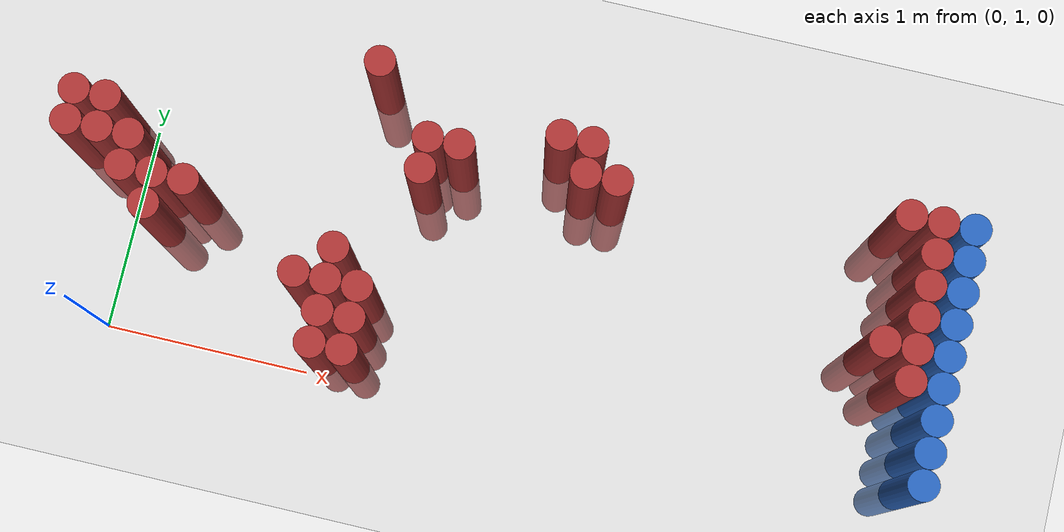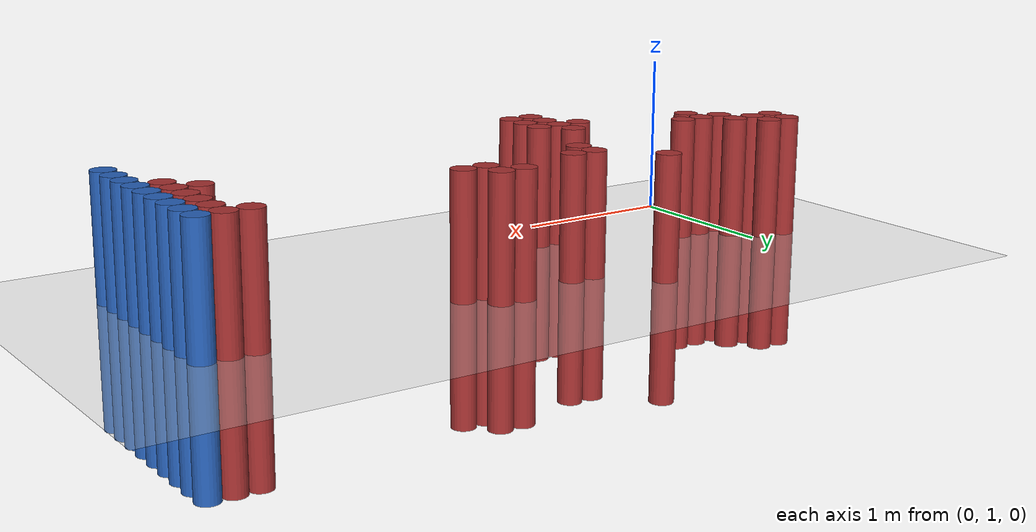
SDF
<sdf version="1.6">
 <world name="default">
  <model name="ground_plane">
   <static>1</static>
   <link name="link">
    <collision name="collision">
     <geometry><plane><normal>0 0 1</normal><size>100 100</size></plane></geometry>
     <surface><friction><ode><mu>100</mu><mu2>50</mu2></ode></friction></surface>
    </collision>
    <visual name="visual">
     <cast_shadows>0</cast_shadows>
     <geometry><plane><normal>0 0 1</normal><size>100 100</size></plane></geometry>
     <material>
      <script><uri>file://media/materials/scripts/gazebo.material</uri><name>Gazebo/Grey</name></script>
     </material>
    </visual>
   </link>
  </model>
  <model name="unit_cylinder_130">
   <static>1</static>
   <pose>3.925000 1.225000 0.000000 0.000000 0.000000 0.000000</pose>
   <link name="link">
    <inertial>
     <mass>1</mass>
     <inertia><ixx>0.145833</ixx><ixy>0</ixy><ixz>0</ixz><iyy>0.145833</iyy><iyz>0</iyz><izz>0.125</izz></inertia>
    </inertial>
    <collision name="collision">
     <geometry><cylinder><radius>0.075000</radius><length>1.5</length></cylinder></geometry>
    </collision>
    <visual name="visual">
     <geometry><cylinder><radius>0.075000</radius><length>1.5</length></cylinder></geometry>
     <material>
      <ambient>0.152000 0.379000 0.720000 1</ambient>
      <diffuse>0.152000 0.379000 0.720000 1</diffuse>
     </material>
     <material>
      <script><name>Gazebo/Grey</name><uri>file://media/materials/scripts/gazebo.material</uri></script>
     </material>
    </visual>
   </link>
  </model>
  <model name="unit_cylinder_132">
   <static>1</static>
   <pose>3.925000 1.375000 0.000000 0.000000 0.000000 0.000000</pose>
   <link name="link">
    <inertial>
     <mass>1</mass>
     <inertia><ixx>0.145833</ixx><ixy>0</ixy><ixz>0</ixz><iyy>0.145833</iyy><iyz>0</iyz><izz>0.125</izz></inertia>
    </inertial>
    <collision name="collision">
     <geometry><cylinder><radius>0.075000</radius><length>1.5</length></cylinder></geometry>
    </collision>
    <visual name="visual">
     <geometry><cylinder><radius>0.075000</radius><length>1.5</length></cylinder></geometry>
     <material>
      <ambient>0.152000 0.379000 0.720000 1</ambient>
      <diffuse>0.152000 0.379000 0.720000 1</diffuse>
     </material>
     <material>
      <script><name>Gazebo/Grey</name><uri>file://media/materials/scripts/gazebo.material</uri></script>
     </material>
    </visual>
   </link>
  </model>
  <model name="unit_cylinder_134">
   <static>1</static>
   <pose>3.925000 1.525000 0.000000 0.000000 0.000000 0.000000</pose>
   <link name="link">
    <inertial>
     <mass>1</mass>
     <inertia><ixx>0.145833</ixx><ixy>0</ixy><ixz>0</ixz><iyy>0.145833</iyy><iyz>0</iyz><izz>0.125</izz></inertia>
    </inertial>
    <collision name="collision">
     <geometry><cylinder><radius>0.075000</radius><length>1.5</length></cylinder></geometry>
    </collision>
    <visual name="visual">
     <geometry><cylinder><radius>0.075000</radius><length>1.5</length></cylinder></geometry>
     <material>
      <ambient>0.152000 0.379000 0.720000 1</ambient>
      <diffuse>0.152000 0.379000 0.720000 1</diffuse>
     </material>
     <material>
      <script><name>Gazebo/Grey</name><uri>file://media/materials/scripts/gazebo.material</uri></script>
     </material>
    </visual>
   </link>
  </model>
  <model name="unit_cylinder_136">
   <static>1</static>
   <pose>3.925000 1.675000 0.000000 0.000000 0.000000 0.000000</pose>
   <link name="link">
    <inertial>
     <mass>1</mass>
     <inertia><ixx>0.145833</ixx><ixy>0</ixy><ixz>0</ixz><iyy>0.145833</iyy><iyz>0</iyz><izz>0.125</izz></inertia>
    </inertial>
    <collision name="collision">
     <geometry><cylinder><radius>0.075000</radius><length>1.5</length></cylinder></geometry>
    </collision>
    <visual name="visual">
     <geometry><cylinder><radius>0.075000</radius><length>1.5</length></cylinder></geometry>
     <material>
      <ambient>0.152000 0.379000 0.720000 1</ambient>
      <diffuse>0.152000 0.379000 0.720000 1</diffuse>
     </material>
     <material>
      <script><name>Gazebo/Grey</name><uri>file://media/materials/scripts/gazebo.material</uri></script>
     </material>
    </visual>
   </link>
  </model>
  <model name="unit_cylinder_138">
   <static>1</static>
   <pose>3.925000 1.825000 0.000000 0.000000 0.000000 0.000000</pose>
   <link name="link">
    <inertial>
     <mass>1</mass>
     <inertia><ixx>0.145833</ixx><ixy>0</ixy><ixz>0</ixz><iyy>0.145833</iyy><iyz>0</iyz><izz>0.125</izz></inertia>
    </inertial>
    <collision name="collision">
     <geometry><cylinder><radius>0.075000</radius><length>1.5</length></cylinder></geometry>
    </collision>
    <visual name="visual">
     <geometry><cylinder><radius>0.075000</radius><length>1.5</length></cylinder></geometry>
     <material>
      <ambient>0.152000 0.379000 0.720000 1</ambient>
      <diffuse>0.152000 0.379000 0.720000 1</diffuse>
     </material>
     <material>
      <script><name>Gazebo/Grey</name><uri>file://media/materials/scripts/gazebo.material</uri></script>
     </material>
    </visual>
   </link>
  </model>
  <model name="unit_cylinder_140">
   <static>1</static>
   <pose>3.925000 1.975000 0.000000 0.000000 0.000000 0.000000</pose>
   <link name="link">
    <inertial>
     <mass>1</mass>
     <inertia><ixx>0.145833</ixx><ixy>0</ixy><ixz>0</ixz><iyy>0.145833</iyy><iyz>0</iyz><izz>0.125</izz></inertia>
    </inertial>
    <collision name="collision">
     <geometry><cylinder><radius>0.075000</radius><length>1.5</length></cylinder></geometry>
    </collision>
    <visual name="visual">
     <geometry><cylinder><radius>0.075000</radius><length>1.5</length></cylinder></geometry>
     <material>
      <ambient>0.152000 0.379000 0.720000 1</ambient>
      <diffuse>0.152000 0.379000 0.720000 1</diffuse>
     </material>
     <material>
      <script><name>Gazebo/Grey</name><uri>file://media/materials/scripts/gazebo.material</uri></script>
     </material>
    </visual>
   </link>
  </model>
  <model name="unit_cylinder_142">
   <static>1</static>
   <pose>3.925000 2.125000 0.000000 0.000000 0.000000 0.000000</pose>
   <link name="link">
    <inertial>
     <mass>1</mass>
     <inertia><ixx>0.145833</ixx><ixy>0</ixy><ixz>0</ixz><iyy>0.145833</iyy><iyz>0</iyz><izz>0.125</izz></inertia>
    </inertial>
    <collision name="collision">
     <geometry><cylinder><radius>0.075000</radius><length>1.5</length></cylinder></geometry>
    </collision>
    <visual name="visual">
     <geometry><cylinder><radius>0.075000</radius><length>1.5</length></cylinder></geometry>
     <material>
      <ambient>0.152000 0.379000 0.720000 1</ambient>
      <diffuse>0.152000 0.379000 0.720000 1</diffuse>
     </material>
     <material>
      <script><name>Gazebo/Grey</name><uri>file://media/materials/scripts/gazebo.material</uri></script>
     </material>
    </visual>
   </link>
  </model>
  <model name="unit_cylinder_144">
   <static>1</static>
   <pose>3.925000 2.275000 0.000000 0.000000 0.000000 0.000000</pose>
   <link name="link">
    <inertial>
     <mass>1</mass>
     <inertia><ixx>0.145833</ixx><ixy>0</ixy><ixz>0</ixz><iyy>0.145833</iyy><iyz>0</iyz><izz>0.125</izz></inertia>
    </inertial>
    <collision name="collision">
     <geometry><cylinder><radius>0.075000</radius><length>1.5</length></cylinder></geometry>
    </collision>
    <visual name="visual">
     <geometry><cylinder><radius>0.075000</radius><length>1.5</length></cylinder></geometry>
     <material>
      <ambient>0.152000 0.379000 0.720000 1</ambient>
      <diffuse>0.152000 0.379000 0.720000 1</diffuse>
     </material>
     <material>
      <script><name>Gazebo/Grey</name><uri>file://media/materials/scripts/gazebo.material</uri></script>
     </material>
    </visual>
   </link>
  </model>
  <model name="unit_cylinder_330">
   <static>1</static>
   <pose>-0.275000 1.825000 0.000000 0.000000 0.000000 0.000000</pose>
   <link name="link">
    <inertial>
     <mass>1</mass>
     <inertia><ixx>0.145833</ixx><ixy>0</ixy><ixz>0</ixz><iyy>0.145833</iyy><iyz>0</iyz><izz>0.125</izz></inertia>
    </inertial>
    <collision name="collision">
     <geometry><cylinder><radius>0.075000</radius><length>1.5</length></cylinder></geometry>
    </collision>
    <visual name="visual">
     <geometry><cylinder><radius>0.075000</radius><length>1.5</length></cylinder></geometry>
     <material>
      <ambient>0.648000 0.192000 0.192000 1</ambient>
      <diffuse>0.648000 0.192000 0.192000 1</diffuse>
     </material>
     <material>
      <script><name>Gazebo/Grey</name><uri>file://media/materials/scripts/gazebo.material</uri></script>
     </material>
    </visual>
   </link>
  </model>
  <model name="unit_cylinder_331">
   <static>1</static>
   <pose>-0.275000 1.975000 0.000000 0.000000 0.000000 0.000000</pose>
   <link name="link">
    <inertial>
     <mass>1</mass>
     <inertia><ixx>0.145833</ixx><ixy>0</ixy><ixz>0</ixz><iyy>0.145833</iyy><iyz>0</iyz><izz>0.125</izz></inertia>
    </inertial>
    <collision name="collision">
     <geometry><cylinder><radius>0.075000</radius><length>1.5</length></cylinder></geometry>
    </collision>
    <visual name="visual">
     <geometry><cylinder><radius>0.075000</radius><length>1.5</length></cylinder></geometry>
     <material>
      <ambient>0.648000 0.192000 0.192000 1</ambient>
      <diffuse>0.648000 0.192000 0.192000 1</diffuse>
     </material>
     <material>
      <script><name>Gazebo/Grey</name><uri>file://media/materials/scripts/gazebo.material</uri></script>
     </material>
    </visual>
   </link>
  </model>
  <model name="unit_cylinder_335">
   <static>1</static>
   <pose>-0.125000 1.825000 0.000000 0.000000 0.000000 0.000000</pose>
   <link name="link">
    <inertial>
     <mass>1</mass>
     <inertia><ixx>0.145833</ixx><ixy>0</ixy><ixz>0</ixz><iyy>0.145833</iyy><iyz>0</iyz><izz>0.125</izz></inertia>
    </inertial>
    <collision name="collision">
     <geometry><cylinder><radius>0.075000</radius><length>1.5</length></cylinder></geometry>
    </collision>
    <visual name="visual">
     <geometry><cylinder><radius>0.075000</radius><length>1.5</length></cylinder></geometry>
     <material>
      <ambient>0.648000 0.192000 0.192000 1</ambient>
      <diffuse>0.648000 0.192000 0.192000 1</diffuse>
     </material>
     <material>
      <script><name>Gazebo/Grey</name><uri>file://media/materials/scripts/gazebo.material</uri></script>
     </material>
    </visual>
   </link>
  </model>
  <model name="unit_cylinder_336">
   <static>1</static>
   <pose>-0.125000 1.975000 0.000000 0.000000 0.000000 0.000000</pose>
   <link name="link">
    <inertial>
     <mass>1</mass>
     <inertia><ixx>0.145833</ixx><ixy>0</ixy><ixz>0</ixz><iyy>0.145833</iyy><iyz>0</iyz><izz>0.125</izz></inertia>
    </inertial>
    <collision name="collision">
     <geometry><cylinder><radius>0.075000</radius><length>1.5</length></cylinder></geometry>
    </collision>
    <visual name="visual">
     <geometry><cylinder><radius>0.075000</radius><length>1.5</length></cylinder></geometry>
     <material>
      <ambient>0.648000 0.192000 0.192000 1</ambient>
      <diffuse>0.648000 0.192000 0.192000 1</diffuse>
     </material>
     <material>
      <script><name>Gazebo/Grey</name><uri>file://media/materials/scripts/gazebo.material</uri></script>
     </material>
    </visual>
   </link>
  </model>
  <model name="unit_cylinder_339">
   <static>1</static>
   <pose>0.025000 1.675000 0.000000 0.000000 0.000000 0.000000</pose>
   <link name="link">
    <inertial>
     <mass>1</mass>
     <inertia><ixx>0.145833</ixx><ixy>0</ixy><ixz>0</ixz><iyy>0.145833</iyy><iyz>0</iyz><izz>0.125</izz></inertia>
    </inertial>
    <collision name="collision">
     <geometry><cylinder><radius>0.075000</radius><length>1.5</length></cylinder></geometry>
    </collision>
    <visual name="visual">
     <geometry><cylinder><radius>0.075000</radius><length>1.5</length></cylinder></geometry>
     <material>
      <ambient>0.648000 0.192000 0.192000 1</ambient>
      <diffuse>0.648000 0.192000 0.192000 1</diffuse>
     </material>
     <material>
      <script><name>Gazebo/Grey</name><uri>file://media/materials/scripts/gazebo.material</uri></script>
     </material>
    </visual>
   </link>
  </model>
  <model name="unit_cylinder_340">
   <static>1</static>
   <pose>0.025000 1.825000 0.000000 0.000000 0.000000 0.000000</pose>
   <link name="link">
    <inertial>
     <mass>1</mass>
     <inertia><ixx>0.145833</ixx><ixy>0</ixy><ixz>0</ixz><iyy>0.145833</iyy><iyz>0</iyz><izz>0.125</izz></inertia>
    </inertial>
    <collision name="collision">
     <geometry><cylinder><radius>0.075000</radius><length>1.5</length></cylinder></geometry>
    </collision>
    <visual name="visual">
     <geometry><cylinder><radius>0.075000</radius><length>1.5</length></cylinder></geometry>
     <material>
      <ambient>0.648000 0.192000 0.192000 1</ambient>
      <diffuse>0.648000 0.192000 0.192000 1</diffuse>
     </material>
     <material>
      <script><name>Gazebo/Grey</name><uri>file://media/materials/scripts/gazebo.material</uri></script>
     </material>
    </visual>
   </link>
  </model>
  <model name="unit_cylinder_341">
   <static>1</static>
   <pose>0.175000 1.525000 0.000000 0.000000 0.000000 0.000000</pose>
   <link name="link">
    <inertial>
     <mass>1</mass>
     <inertia><ixx>0.145833</ixx><ixy>0</ixy><ixz>0</ixz><iyy>0.145833</iyy><iyz>0</iyz><izz>0.125</izz></inertia>
    </inertial>
    <collision name="collision">
     <geometry><cylinder><radius>0.075000</radius><length>1.5</length></cylinder></geometry>
    </collision>
    <visual name="visual">
     <geometry><cylinder><radius>0.075000</radius><length>1.5</length></cylinder></geometry>
     <material>
      <ambient>0.648000 0.192000 0.192000 1</ambient>
      <diffuse>0.648000 0.192000 0.192000 1</diffuse>
     </material>
     <material>
      <script><name>Gazebo/Grey</name><uri>file://media/materials/scripts/gazebo.material</uri></script>
     </material>
    </visual>
   </link>
  </model>
  <model name="unit_cylinder_342">
   <static>1</static>
   <pose>0.175000 1.675000 0.000000 0.000000 0.000000 0.000000</pose>
   <link name="link">
    <inertial>
     <mass>1</mass>
     <inertia><ixx>0.145833</ixx><ixy>0</ixy><ixz>0</ixz><iyy>0.145833</iyy><iyz>0</iyz><izz>0.125</izz></inertia>
    </inertial>
    <collision name="collision">
     <geometry><cylinder><radius>0.075000</radius><length>1.5</length></cylinder></geometry>
    </collision>
    <visual name="visual">
     <geometry><cylinder><radius>0.075000</radius><length>1.5</length></cylinder></geometry>
     <material>
      <ambient>0.648000 0.192000 0.192000 1</ambient>
      <diffuse>0.648000 0.192000 0.192000 1</diffuse>
     </material>
     <material>
      <script><name>Gazebo/Grey</name><uri>file://media/materials/scripts/gazebo.material</uri></script>
     </material>
    </visual>
   </link>
  </model>
  <model name="unit_cylinder_345">
   <static>1</static>
   <pose>0.325000 1.675000 0.000000 0.000000 0.000000 0.000000</pose>
   <link name="link">
    <inertial>
     <mass>1</mass>
     <inertia><ixx>0.145833</ixx><ixy>0</ixy><ixz>0</ixz><iyy>0.145833</iyy><iyz>0</iyz><izz>0.125</izz></inertia>
    </inertial>
    <collision name="collision">
     <geometry><cylinder><radius>0.075000</radius><length>1.5</length></cylinder></geometry>
    </collision>
    <visual name="visual">
     <geometry><cylinder><radius>0.075000</radius><length>1.5</length></cylinder></geometry>
     <material>
      <ambient>0.648000 0.192000 0.192000 1</ambient>
      <diffuse>0.648000 0.192000 0.192000 1</diffuse>
     </material>
     <material>
      <script><name>Gazebo/Grey</name><uri>file://media/materials/scripts/gazebo.material</uri></script>
     </material>
    </visual>
   </link>
  </model>
  <model name="unit_cylinder_348">
   <static>1</static>
   <pose>0.925000 1.375000 0.000000 0.000000 0.000000 0.000000</pose>
   <link name="link">
    <inertial>
     <mass>1</mass>
     <inertia><ixx>0.145833</ixx><ixy>0</ixy><ixz>0</ixz><iyy>0.145833</iyy><iyz>0</iyz><izz>0.125</izz></inertia>
    </inertial>
    <collision name="collision">
     <geometry><cylinder><radius>0.075000</radius><length>1.5</length></cylinder></geometry>
    </collision>
    <visual name="visual">
     <geometry><cylinder><radius>0.075000</radius><length>1.5</length></cylinder></geometry>
     <material>
      <ambient>0.648000 0.192000 0.192000 1</ambient>
      <diffuse>0.648000 0.192000 0.192000 1</diffuse>
     </material>
     <material>
      <script><name>Gazebo/Grey</name><uri>file://media/materials/scripts/gazebo.material</uri></script>
     </material>
    </visual>
   </link>
  </model>
  <model name="unit_cylinder_356">
   <static>1</static>
   <pose>1.075000 1.075000 0.000000 0.000000 0.000000 0.000000</pose>
   <link name="link">
    <inertial>
     <mass>1</mass>
     <inertia><ixx>0.145833</ixx><ixy>0</ixy><ixz>0</ixz><iyy>0.145833</iyy><iyz>0</iyz><izz>0.125</izz></inertia>
    </inertial>
    <collision name="collision">
     <geometry><cylinder><radius>0.075000</radius><length>1.5</length></cylinder></geometry>
    </collision>
    <visual name="visual">
     <geometry><cylinder><radius>0.075000</radius><length>1.5</length></cylinder></geometry>
     <material>
      <ambient>0.648000 0.192000 0.192000 1</ambient>
      <diffuse>0.648000 0.192000 0.192000 1</diffuse>
     </material>
     <material>
      <script><name>Gazebo/Grey</name><uri>file://media/materials/scripts/gazebo.material</uri></script>
     </material>
    </visual>
   </link>
  </model>
  <model name="unit_cylinder_357">
   <static>1</static>
   <pose>1.075000 1.225000 0.000000 0.000000 0.000000 0.000000</pose>
   <link name="link">
    <inertial>
     <mass>1</mass>
     <inertia><ixx>0.145833</ixx><ixy>0</ixy><ixz>0</ixz><iyy>0.145833</iyy><iyz>0</iyz><izz>0.125</izz></inertia>
    </inertial>
    <collision name="collision">
     <geometry><cylinder><radius>0.075000</radius><length>1.5</length></cylinder></geometry>
    </collision>
    <visual name="visual">
     <geometry><cylinder><radius>0.075000</radius><length>1.5</length></cylinder></geometry>
     <material>
      <ambient>0.648000 0.192000 0.192000 1</ambient>
      <diffuse>0.648000 0.192000 0.192000 1</diffuse>
     </material>
     <material>
      <script><name>Gazebo/Grey</name><uri>file://media/materials/scripts/gazebo.material</uri></script>
     </material>
    </visual>
   </link>
  </model>
  <model name="unit_cylinder_358">
   <static>1</static>
   <pose>1.075000 1.375000 0.000000 0.000000 0.000000 0.000000</pose>
   <link name="link">
    <inertial>
     <mass>1</mass>
     <inertia><ixx>0.145833</ixx><ixy>0</ixy><ixz>0</ixz><iyy>0.145833</iyy><iyz>0</iyz><izz>0.125</izz></inertia>
    </inertial>
    <collision name="collision">
     <geometry><cylinder><radius>0.075000</radius><length>1.5</length></cylinder></geometry>
    </collision>
    <visual name="visual">
     <geometry><cylinder><radius>0.075000</radius><length>1.5</length></cylinder></geometry>
     <material>
      <ambient>0.648000 0.192000 0.192000 1</ambient>
      <diffuse>0.648000 0.192000 0.192000 1</diffuse>
     </material>
     <material>
      <script><name>Gazebo/Grey</name><uri>file://media/materials/scripts/gazebo.material</uri></script>
     </material>
    </visual>
   </link>
  </model>
  <model name="unit_cylinder_359">
   <static>1</static>
   <pose>1.075000 1.525000 0.000000 0.000000 0.000000 0.000000</pose>
   <link name="link">
    <inertial>
     <mass>1</mass>
     <inertia><ixx>0.145833</ixx><ixy>0</ixy><ixz>0</ixz><iyy>0.145833</iyy><iyz>0</iyz><izz>0.125</izz></inertia>
    </inertial>
    <collision name="collision">
     <geometry><cylinder><radius>0.075000</radius><length>1.5</length></cylinder></geometry>
    </collision>
    <visual name="visual">
     <geometry><cylinder><radius>0.075000</radius><length>1.5</length></cylinder></geometry>
     <material>
      <ambient>0.648000 0.192000 0.192000 1</ambient>
      <diffuse>0.648000 0.192000 0.192000 1</diffuse>
     </material>
     <material>
      <script><name>Gazebo/Grey</name><uri>file://media/materials/scripts/gazebo.material</uri></script>
     </material>
    </visual>
   </link>
  </model>
  <model name="unit_cylinder_360">
   <static>1</static>
   <pose>1.075000 2.425000 0.000000 0.000000 0.000000 0.000000</pose>
   <link name="link">
    <inertial>
     <mass>1</mass>
     <inertia><ixx>0.145833</ixx><ixy>0</ixy><ixz>0</ixz><iyy>0.145833</iyy><iyz>0</iyz><izz>0.125</izz></inertia>
    </inertial>
    <collision name="collision">
     <geometry><cylinder><radius>0.075000</radius><length>1.5</length></cylinder></geometry>
    </collision>
    <visual name="visual">
     <geometry><cylinder><radius>0.075000</radius><length>1.5</length></cylinder></geometry>
     <material>
      <ambient>0.648000 0.192000 0.192000 1</ambient>
      <diffuse>0.648000 0.192000 0.192000 1</diffuse>
     </material>
     <material>
      <script><name>Gazebo/Grey</name><uri>file://media/materials/scripts/gazebo.material</uri></script>
     </material>
    </visual>
   </link>
  </model>
  <model name="unit_cylinder_366">
   <static>1</static>
   <pose>1.225000 1.075000 0.000000 0.000000 0.000000 0.000000</pose>
   <link name="link">
    <inertial>
     <mass>1</mass>
     <inertia><ixx>0.145833</ixx><ixy>0</ixy><ixz>0</ixz><iyy>0.145833</iyy><iyz>0</iyz><izz>0.125</izz></inertia>
    </inertial>
    <collision name="collision">
     <geometry><cylinder><radius>0.075000</radius><length>1.5</length></cylinder></geometry>
    </collision>
    <visual name="visual">
     <geometry><cylinder><radius>0.075000</radius><length>1.5</length></cylinder></geometry>
     <material>
      <ambient>0.648000 0.192000 0.192000 1</ambient>
      <diffuse>0.648000 0.192000 0.192000 1</diffuse>
     </material>
     <material>
      <script><name>Gazebo/Grey</name><uri>file://media/materials/scripts/gazebo.material</uri></script>
     </material>
    </visual>
   </link>
  </model>
  <model name="unit_cylinder_367">
   <static>1</static>
   <pose>1.225000 1.225000 0.000000 0.000000 0.000000 0.000000</pose>
   <link name="link">
    <inertial>
     <mass>1</mass>
     <inertia><ixx>0.145833</ixx><ixy>0</ixy><ixz>0</ixz><iyy>0.145833</iyy><iyz>0</iyz><izz>0.125</izz></inertia>
    </inertial>
    <collision name="collision">
     <geometry><cylinder><radius>0.075000</radius><length>1.5</length></cylinder></geometry>
    </collision>
    <visual name="visual">
     <geometry><cylinder><radius>0.075000</radius><length>1.5</length></cylinder></geometry>
     <material>
      <ambient>0.648000 0.192000 0.192000 1</ambient>
      <diffuse>0.648000 0.192000 0.192000 1</diffuse>
     </material>
     <material>
      <script><name>Gazebo/Grey</name><uri>file://media/materials/scripts/gazebo.material</uri></script>
     </material>
    </visual>
   </link>
  </model>
  <model name="unit_cylinder_368">
   <static>1</static>
   <pose>1.225000 1.375000 0.000000 0.000000 0.000000 0.000000</pose>
   <link name="link">
    <inertial>
     <mass>1</mass>
     <inertia><ixx>0.145833</ixx><ixy>0</ixy><ixz>0</ixz><iyy>0.145833</iyy><iyz>0</iyz><izz>0.125</izz></inertia>
    </inertial>
    <collision name="collision">
     <geometry><cylinder><radius>0.075000</radius><length>1.5</length></cylinder></geometry>
    </collision>
    <visual name="visual">
     <geometry><cylinder><radius>0.075000</radius><length>1.5</length></cylinder></geometry>
     <material>
      <ambient>0.648000 0.192000 0.192000 1</ambient>
      <diffuse>0.648000 0.192000 0.192000 1</diffuse>
     </material>
     <material>
      <script><name>Gazebo/Grey</name><uri>file://media/materials/scripts/gazebo.material</uri></script>
     </material>
    </visual>
   </link>
  </model>
  <model name="unit_cylinder_376">
   <static>1</static>
   <pose>1.375000 1.975000 0.000000 0.000000 0.000000 0.000000</pose>
   <link name="link">
    <inertial>
     <mass>1</mass>
     <inertia><ixx>0.145833</ixx><ixy>0</ixy><ixz>0</ixz><iyy>0.145833</iyy><iyz>0</iyz><izz>0.125</izz></inertia>
    </inertial>
    <collision name="collision">
     <geometry><cylinder><radius>0.075000</radius><length>1.5</length></cylinder></geometry>
    </collision>
    <visual name="visual">
     <geometry><cylinder><radius>0.075000</radius><length>1.5</length></cylinder></geometry>
     <material>
      <ambient>0.648000 0.192000 0.192000 1</ambient>
      <diffuse>0.648000 0.192000 0.192000 1</diffuse>
     </material>
     <material>
      <script><name>Gazebo/Grey</name><uri>file://media/materials/scripts/gazebo.material</uri></script>
     </material>
    </visual>
   </link>
  </model>
  <model name="unit_cylinder_377">
   <static>1</static>
   <pose>1.375000 2.125000 0.000000 0.000000 0.000000 0.000000</pose>
   <link name="link">
    <inertial>
     <mass>1</mass>
     <inertia><ixx>0.145833</ixx><ixy>0</ixy><ixz>0</ixz><iyy>0.145833</iyy><iyz>0</iyz><izz>0.125</izz></inertia>
    </inertial>
    <collision name="collision">
     <geometry><cylinder><radius>0.075000</radius><length>1.5</length></cylinder></geometry>
    </collision>
    <visual name="visual">
     <geometry><cylinder><radius>0.075000</radius><length>1.5</length></cylinder></geometry>
     <material>
      <ambient>0.648000 0.192000 0.192000 1</ambient>
      <diffuse>0.648000 0.192000 0.192000 1</diffuse>
     </material>
     <material>
      <script><name>Gazebo/Grey</name><uri>file://media/materials/scripts/gazebo.material</uri></script>
     </material>
    </visual>
   </link>
  </model>
  <model name="unit_cylinder_383">
   <static>1</static>
   <pose>1.525000 2.125000 0.000000 0.000000 0.000000 0.000000</pose>
   <link name="link">
    <inertial>
     <mass>1</mass>
     <inertia><ixx>0.145833</ixx><ixy>0</ixy><ixz>0</ixz><iyy>0.145833</iyy><iyz>0</iyz><izz>0.125</izz></inertia>
    </inertial>
    <collision name="collision">
     <geometry><cylinder><radius>0.075000</radius><length>1.5</length></cylinder></geometry>
    </collision>
    <visual name="visual">
     <geometry><cylinder><radius>0.075000</radius><length>1.5</length></cylinder></geometry>
     <material>
      <ambient>0.648000 0.192000 0.192000 1</ambient>
      <diffuse>0.648000 0.192000 0.192000 1</diffuse>
     </material>
     <material>
      <script><name>Gazebo/Grey</name><uri>file://media/materials/scripts/gazebo.material</uri></script>
     </material>
    </visual>
   </link>
  </model>
  <model name="unit_cylinder_387">
   <static>1</static>
   <pose>1.975000 2.275000 0.000000 0.000000 0.000000 0.000000</pose>
   <link name="link">
    <inertial>
     <mass>1</mass>
     <inertia><ixx>0.145833</ixx><ixy>0</ixy><ixz>0</ixz><iyy>0.145833</iyy><iyz>0</iyz><izz>0.125</izz></inertia>
    </inertial>
    <collision name="collision">
     <geometry><cylinder><radius>0.075000</radius><length>1.5</length></cylinder></geometry>
    </collision>
    <visual name="visual">
     <geometry><cylinder><radius>0.075000</radius><length>1.5</length></cylinder></geometry>
     <material>
      <ambient>0.648000 0.192000 0.192000 1</ambient>
      <diffuse>0.648000 0.192000 0.192000 1</diffuse>
     </material>
     <material>
      <script><name>Gazebo/Grey</name><uri>file://media/materials/scripts/gazebo.material</uri></script>
     </material>
    </visual>
   </link>
  </model>
  <model name="unit_cylinder_388">
   <static>1</static>
   <pose>2.125000 2.125000 0.000000 0.000000 0.000000 0.000000</pose>
   <link name="link">
    <inertial>
     <mass>1</mass>
     <inertia><ixx>0.145833</ixx><ixy>0</ixy><ixz>0</ixz><iyy>0.145833</iyy><iyz>0</iyz><izz>0.125</izz></inertia>
    </inertial>
    <collision name="collision">
     <geometry><cylinder><radius>0.075000</radius><length>1.5</length></cylinder></geometry>
    </collision>
    <visual name="visual">
     <geometry><cylinder><radius>0.075000</radius><length>1.5</length></cylinder></geometry>
     <material>
      <ambient>0.648000 0.192000 0.192000 1</ambient>
      <diffuse>0.648000 0.192000 0.192000 1</diffuse>
     </material>
     <material>
      <script><name>Gazebo/Grey</name><uri>file://media/materials/scripts/gazebo.material</uri></script>
     </material>
    </visual>
   </link>
  </model>
  <model name="unit_cylinder_389">
   <static>1</static>
   <pose>2.125000 2.275000 0.000000 0.000000 0.000000 0.000000</pose>
   <link name="link">
    <inertial>
     <mass>1</mass>
     <inertia><ixx>0.145833</ixx><ixy>0</ixy><ixz>0</ixz><iyy>0.145833</iyy><iyz>0</iyz><izz>0.125</izz></inertia>
    </inertial>
    <collision name="collision">
     <geometry><cylinder><radius>0.075000</radius><length>1.5</length></cylinder></geometry>
    </collision>
    <visual name="visual">
     <geometry><cylinder><radius>0.075000</radius><length>1.5</length></cylinder></geometry>
     <material>
      <ambient>0.648000 0.192000 0.192000 1</ambient>
      <diffuse>0.648000 0.192000 0.192000 1</diffuse>
     </material>
     <material>
      <script><name>Gazebo/Grey</name><uri>file://media/materials/scripts/gazebo.material</uri></script>
     </material>
    </visual>
   </link>
  </model>
  <model name="unit_cylinder_390">
   <static>1</static>
   <pose>2.275000 2.125000 0.000000 0.000000 0.000000 0.000000</pose>
   <link name="link">
    <inertial>
     <mass>1</mass>
     <inertia><ixx>0.145833</ixx><ixy>0</ixy><ixz>0</ixz><iyy>0.145833</iyy><iyz>0</iyz><izz>0.125</izz></inertia>
    </inertial>
    <collision name="collision">
     <geometry><cylinder><radius>0.075000</radius><length>1.5</length></cylinder></geometry>
    </collision>
    <visual name="visual">
     <geometry><cylinder><radius>0.075000</radius><length>1.5</length></cylinder></geometry>
     <material>
      <ambient>0.648000 0.192000 0.192000 1</ambient>
      <diffuse>0.648000 0.192000 0.192000 1</diffuse>
     </material>
     <material>
      <script><name>Gazebo/Grey</name><uri>file://media/materials/scripts/gazebo.material</uri></script>
     </material>
    </visual>
   </link>
  </model>
  <model name="unit_cylinder_425">
   <static>1</static>
   <pose>3.625000 1.675000 0.000000 0.000000 0.000000 0.000000</pose>
   <link name="link">
    <inertial>
     <mass>1</mass>
     <inertia><ixx>0.145833</ixx><ixy>0</ixy><ixz>0</ixz><iyy>0.145833</iyy><iyz>0</iyz><izz>0.125</izz></inertia>
    </inertial>
    <collision name="collision">
     <geometry><cylinder><radius>0.075000</radius><length>1.5</length></cylinder></geometry>
    </collision>
    <visual name="visual">
     <geometry><cylinder><radius>0.075000</radius><length>1.5</length></cylinder></geometry>
     <material>
      <ambient>0.648000 0.192000 0.192000 1</ambient>
      <diffuse>0.648000 0.192000 0.192000 1</diffuse>
     </material>
     <material>
      <script><name>Gazebo/Grey</name><uri>file://media/materials/scripts/gazebo.material</uri></script>
     </material>
    </visual>
   </link>
  </model>
  <model name="unit_cylinder_426">
   <static>1</static>
   <pose>3.625000 2.275000 0.000000 0.000000 0.000000 0.000000</pose>
   <link name="link">
    <inertial>
     <mass>1</mass>
     <inertia><ixx>0.145833</ixx><ixy>0</ixy><ixz>0</ixz><iyy>0.145833</iyy><iyz>0</iyz><izz>0.125</izz></inertia>
    </inertial>
    <collision name="collision">
     <geometry><cylinder><radius>0.075000</radius><length>1.5</length></cylinder></geometry>
    </collision>
    <visual name="visual">
     <geometry><cylinder><radius>0.075000</radius><length>1.5</length></cylinder></geometry>
     <material>
      <ambient>0.648000 0.192000 0.192000 1</ambient>
      <diffuse>0.648000 0.192000 0.192000 1</diffuse>
     </material>
     <material>
      <script><name>Gazebo/Grey</name><uri>file://media/materials/scripts/gazebo.material</uri></script>
     </material>
    </visual>
   </link>
  </model>
  <model name="unit_cylinder_439">
   <static>1</static>
   <pose>3.775000 1.525000 0.000000 0.000000 0.000000 0.000000</pose>
   <link name="link">
    <inertial>
     <mass>1</mass>
     <inertia><ixx>0.145833</ixx><ixy>0</ixy><ixz>0</ixz><iyy>0.145833</iyy><iyz>0</iyz><izz>0.125</izz></inertia>
    </inertial>
    <collision name="collision">
     <geometry><cylinder><radius>0.075000</radius><length>1.5</length></cylinder></geometry>
    </collision>
    <visual name="visual">
     <geometry><cylinder><radius>0.075000</radius><length>1.5</length></cylinder></geometry>
     <material>
      <ambient>0.648000 0.192000 0.192000 1</ambient>
      <diffuse>0.648000 0.192000 0.192000 1</diffuse>
     </material>
     <material>
      <script><name>Gazebo/Grey</name><uri>file://media/materials/scripts/gazebo.material</uri></script>
     </material>
    </visual>
   </link>
  </model>
  <model name="unit_cylinder_440">
   <static>1</static>
   <pose>3.775000 1.675000 0.000000 0.000000 0.000000 0.000000</pose>
   <link name="link">
    <inertial>
     <mass>1</mass>
     <inertia><ixx>0.145833</ixx><ixy>0</ixy><ixz>0</ixz><iyy>0.145833</iyy><iyz>0</iyz><izz>0.125</izz></inertia>
    </inertial>
    <collision name="collision">
     <geometry><cylinder><radius>0.075000</radius><length>1.5</length></cylinder></geometry>
    </collision>
    <visual name="visual">
     <geometry><cylinder><radius>0.075000</radius><length>1.5</length></cylinder></geometry>
     <material>
      <ambient>0.648000 0.192000 0.192000 1</ambient>
      <diffuse>0.648000 0.192000 0.192000 1</diffuse>
     </material>
     <material>
      <script><name>Gazebo/Grey</name><uri>file://media/materials/scripts/gazebo.material</uri></script>
     </material>
    </visual>
   </link>
  </model>
  <model name="unit_cylinder_441">
   <static>1</static>
   <pose>3.775000 1.825000 0.000000 0.000000 0.000000 0.000000</pose>
   <link name="link">
    <inertial>
     <mass>1</mass>
     <inertia><ixx>0.145833</ixx><ixy>0</ixy><ixz>0</ixz><iyy>0.145833</iyy><iyz>0</iyz><izz>0.125</izz></inertia>
    </inertial>
    <collision name="collision">
     <geometry><cylinder><radius>0.075000</radius><length>1.5</length></cylinder></geometry>
    </collision>
    <visual name="visual">
     <geometry><cylinder><radius>0.075000</radius><length>1.5</length></cylinder></geometry>
     <material>
      <ambient>0.648000 0.192000 0.192000 1</ambient>
      <diffuse>0.648000 0.192000 0.192000 1</diffuse>
     </material>
     <material>
      <script><name>Gazebo/Grey</name><uri>file://media/materials/scripts/gazebo.material</uri></script>
     </material>
    </visual>
   </link>
  </model>
  <model name="unit_cylinder_442">
   <static>1</static>
   <pose>3.775000 1.975000 0.000000 0.000000 0.000000 0.000000</pose>
   <link name="link">
    <inertial>
     <mass>1</mass>
     <inertia><ixx>0.145833</ixx><ixy>0</ixy><ixz>0</ixz><iyy>0.145833</iyy><iyz>0</iyz><izz>0.125</izz></inertia>
    </inertial>
    <collision name="collision">
     <geometry><cylinder><radius>0.075000</radius><length>1.5</length></cylinder></geometry>
    </collision>
    <visual name="visual">
     <geometry><cylinder><radius>0.075000</radius><length>1.5</length></cylinder></geometry>
     <material>
      <ambient>0.648000 0.192000 0.192000 1</ambient>
      <diffuse>0.648000 0.192000 0.192000 1</diffuse>
     </material>
     <material>
      <script><name>Gazebo/Grey</name><uri>file://media/materials/scripts/gazebo.material</uri></script>
     </material>
    </visual>
   </link>
  </model>
  <model name="unit_cylinder_443">
   <static>1</static>
   <pose>3.775000 2.125000 0.000000 0.000000 0.000000 0.000000</pose>
   <link name="link">
    <inertial>
     <mass>1</mass>
     <inertia><ixx>0.145833</ixx><ixy>0</ixy><ixz>0</ixz><iyy>0.145833</iyy><iyz>0</iyz><izz>0.125</izz></inertia>
    </inertial>
    <collision name="collision">
     <geometry><cylinder><radius>0.075000</radius><length>1.5</length></cylinder></geometry>
    </collision>
    <visual name="visual">
     <geometry><cylinder><radius>0.075000</radius><length>1.5</length></cylinder></geometry>
     <material>
      <ambient>0.648000 0.192000 0.192000 1</ambient>
      <diffuse>0.648000 0.192000 0.192000 1</diffuse>
     </material>
     <material>
      <script><name>Gazebo/Grey</name><uri>file://media/materials/scripts/gazebo.material</uri></script>
     </material>
    </visual>
   </link>
  </model>
  <model name="unit_cylinder_444">
   <static>1</static>
   <pose>3.775000 2.275000 0.000000 0.000000 0.000000 0.000000</pose>
   <link name="link">
    <inertial>
     <mass>1</mass>
     <inertia><ixx>0.145833</ixx><ixy>0</ixy><ixz>0</ixz><iyy>0.145833</iyy><iyz>0</iyz><izz>0.125</izz></inertia>
    </inertial>
    <collision name="collision">
     <geometry><cylinder><radius>0.075000</radius><length>1.5</length></cylinder></geometry>
    </collision>
    <visual name="visual">
     <geometry><cylinder><radius>0.075000</radius><length>1.5</length></cylinder></geometry>
     <material>
      <ambient>0.648000 0.192000 0.192000 1</ambient>
      <diffuse>0.648000 0.192000 0.192000 1</diffuse>
     </material>
     <material>
      <script><name>Gazebo/Grey</name><uri>file://media/materials/scripts/gazebo.material</uri></script>
     </material>
    </visual>
   </link>
  </model>
  <model name="unit_cylinder_474">
   <static>1</static>
   <pose>3.925000 1.075000 0.000000 0.000000 0.000000 0.000000</pose>
   <link name="link">
    <inertial>
     <mass>1</mass>
     <inertia><ixx>0.145833</ixx><ixy>0</ixy><ixz>0</ixz><iyy>0.145833</iyy><iyz>0</iyz><izz>0.125</izz></inertia>
    </inertial>
    <collision name="collision">
     <geometry><cylinder><radius>0.075000</radius><length>1.5</length></cylinder></geometry>
    </collision>
    <visual name="visual">
     <geometry><cylinder><radius>0.075000</radius><length>1.5</length></cylinder></geometry>
     <material>
      <ambient>0.152000 0.379000 0.720000 1</ambient>
      <diffuse>0.152000 0.379000 0.720000 1</diffuse>
     </material>
     <material>
      <script><name>Gazebo/Grey</name><uri>file://media/materials/scripts/gazebo.material</uri></script>
     </material>
    </visual>
   </link>
  </model>
  <model name="unit_cylinder_475">
   <static>1</static>
   <pose>3.925000 1.225000 0.000000 0.000000 0.000000 0.000000</pose>
   <link name="link">
    <inertial>
     <mass>1</mass>
     <inertia><ixx>0.145833</ixx><ixy>0</ixy><ixz>0</ixz><iyy>0.145833</iyy><iyz>0</iyz><izz>0.125</izz></inertia>
    </inertial>
    <collision name="collision">
     <geometry><cylinder><radius>0.075000</radius><length>1.5</length></cylinder></geometry>
    </collision>
    <visual name="visual">
     <geometry><cylinder><radius>0.075000</radius><length>1.5</length></cylinder></geometry>
     <material>
      <ambient>0.152000 0.379000 0.720000 1</ambient>
      <diffuse>0.152000 0.379000 0.720000 1</diffuse>
     </material>
     <material>
      <script><name>Gazebo/Grey</name><uri>file://media/materials/scripts/gazebo.material</uri></script>
     </material>
    </visual>
   </link>
  </model>
  <model name="unit_cylinder_476">
   <static>1</static>
   <pose>3.925000 1.375000 0.000000 0.000000 0.000000 0.000000</pose>
   <link name="link">
    <inertial>
     <mass>1</mass>
     <inertia><ixx>0.145833</ixx><ixy>0</ixy><ixz>0</ixz><iyy>0.145833</iyy><iyz>0</iyz><izz>0.125</izz></inertia>
    </inertial>
    <collision name="collision">
     <geometry><cylinder><radius>0.075000</radius><length>1.5</length></cylinder></geometry>
    </collision>
    <visual name="visual">
     <geometry><cylinder><radius>0.075000</radius><length>1.5</length></cylinder></geometry>
     <material>
      <ambient>0.152000 0.379000 0.720000 1</ambient>
      <diffuse>0.152000 0.379000 0.720000 1</diffuse>
     </material>
     <material>
      <script><name>Gazebo/Grey</name><uri>file://media/materials/scripts/gazebo.material</uri></script>
     </material>
    </visual>
   </link>
  </model>
  <model name="unit_cylinder_477">
   <static>1</static>
   <pose>3.925000 1.525000 0.000000 0.000000 0.000000 0.000000</pose>
   <link name="link">
    <inertial>
     <mass>1</mass>
     <inertia><ixx>0.145833</ixx><ixy>0</ixy><ixz>0</ixz><iyy>0.145833</iyy><iyz>0</iyz><izz>0.125</izz></inertia>
    </inertial>
    <collision name="collision">
     <geometry><cylinder><radius>0.075000</radius><length>1.5</length></cylinder></geometry>
    </collision>
    <visual name="visual">
     <geometry><cylinder><radius>0.075000</radius><length>1.5</length></cylinder></geometry>
     <material>
      <ambient>0.152000 0.379000 0.720000 1</ambient>
      <diffuse>0.152000 0.379000 0.720000 1</diffuse>
     </material>
     <material>
      <script><name>Gazebo/Grey</name><uri>file://media/materials/scripts/gazebo.material</uri></script>
     </material>
    </visual>
   </link>
  </model>
  <model name="unit_cylinder_478">
   <static>1</static>
   <pose>3.925000 1.675000 0.000000 0.000000 0.000000 0.000000</pose>
   <link name="link">
    <inertial>
     <mass>1</mass>
     <inertia><ixx>0.145833</ixx><ixy>0</ixy><ixz>0</ixz><iyy>0.145833</iyy><iyz>0</iyz><izz>0.125</izz></inertia>
    </inertial>
    <collision name="collision">
     <geometry><cylinder><radius>0.075000</radius><length>1.5</length></cylinder></geometry>
    </collision>
    <visual name="visual">
     <geometry><cylinder><radius>0.075000</radius><length>1.5</length></cylinder></geometry>
     <material>
      <ambient>0.152000 0.379000 0.720000 1</ambient>
      <diffuse>0.152000 0.379000 0.720000 1</diffuse>
     </material>
     <material>
      <script><name>Gazebo/Grey</name><uri>file://media/materials/scripts/gazebo.material</uri></script>
     </material>
    </visual>
   </link>
  </model>
  <model name="unit_cylinder_479">
   <static>1</static>
   <pose>3.925000 1.825000 0.000000 0.000000 0.000000 0.000000</pose>
   <link name="link">
    <inertial>
     <mass>1</mass>
     <inertia><ixx>0.145833</ixx><ixy>0</ixy><ixz>0</ixz><iyy>0.145833</iyy><iyz>0</iyz><izz>0.125</izz></inertia>
    </inertial>
    <collision name="collision">
     <geometry><cylinder><radius>0.075000</radius><length>1.5</length></cylinder></geometry>
    </collision>
    <visual name="visual">
     <geometry><cylinder><radius>0.075000</radius><length>1.5</length></cylinder></geometry>
     <material>
      <ambient>0.152000 0.379000 0.720000 1</ambient>
      <diffuse>0.152000 0.379000 0.720000 1</diffuse>
     </material>
     <material>
      <script><name>Gazebo/Grey</name><uri>file://media/materials/scripts/gazebo.material</uri></script>
     </material>
    </visual>
   </link>
  </model>
  <model name="unit_cylinder_480">
   <static>1</static>
   <pose>3.925000 1.975000 0.000000 0.000000 0.000000 0.000000</pose>
   <link name="link">
    <inertial>
     <mass>1</mass>
     <inertia><ixx>0.145833</ixx><ixy>0</ixy><ixz>0</ixz><iyy>0.145833</iyy><iyz>0</iyz><izz>0.125</izz></inertia>
    </inertial>
    <collision name="collision">
     <geometry><cylinder><radius>0.075000</radius><length>1.5</length></cylinder></geometry>
    </collision>
    <visual name="visual">
     <geometry><cylinder><radius>0.075000</radius><length>1.5</length></cylinder></geometry>
     <material>
      <ambient>0.152000 0.379000 0.720000 1</ambient>
      <diffuse>0.152000 0.379000 0.720000 1</diffuse>
     </material>
     <material>
      <script><name>Gazebo/Grey</name><uri>file://media/materials/scripts/gazebo.material</uri></script>
     </material>
    </visual>
   </link>
  </model>
  <model name="unit_cylinder_481">
   <static>1</static>
   <pose>3.925000 2.125000 0.000000 0.000000 0.000000 0.000000</pose>
   <link name="link">
    <inertial>
     <mass>1</mass>
     <inertia><ixx>0.145833</ixx><ixy>0</ixy><ixz>0</ixz><iyy>0.145833</iyy><iyz>0</iyz><izz>0.125</izz></inertia>
    </inertial>
    <collision name="collision">
     <geometry><cylinder><radius>0.075000</radius><length>1.5</length></cylinder></geometry>
    </collision>
    <visual name="visual">
     <geometry><cylinder><radius>0.075000</radius><length>1.5</length></cylinder></geometry>
     <material>
      <ambient>0.152000 0.379000 0.720000 1</ambient>
      <diffuse>0.152000 0.379000 0.720000 1</diffuse>
     </material>
     <material>
      <script><name>Gazebo/Grey</name><uri>file://media/materials/scripts/gazebo.material</uri></script>
     </material>
    </visual>
   </link>
  </model>
  <model name="unit_cylinder_482">
   <static>1</static>
   <pose>3.925000 2.275000 0.000000 0.000000 0.000000 0.000000</pose>
   <link name="link">
    <inertial>
     <mass>1</mass>
     <inertia><ixx>0.145833</ixx><ixy>0</ixy><ixz>0</ixz><iyy>0.145833</iyy><iyz>0</iyz><izz>0.125</izz></inertia>
    </inertial>
    <collision name="collision">
     <geometry><cylinder><radius>0.075000</radius><length>1.5</length></cylinder></geometry>
    </collision>
    <visual name="visual">
     <geometry><cylinder><radius>0.075000</radius><length>1.5</length></cylinder></geometry>
     <material>
      <ambient>0.152000 0.379000 0.720000 1</ambient>
      <diffuse>0.152000 0.379000 0.720000 1</diffuse>
     </material>
     <material>
      <script><name>Gazebo/Grey</name><uri>file://media/materials/scripts/gazebo.material</uri></script>
     </material>
    </visual>
   </link>
  </model>
 </world>
</sdf>
